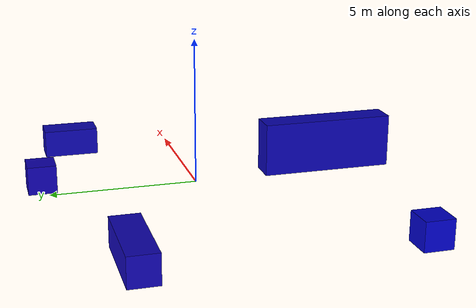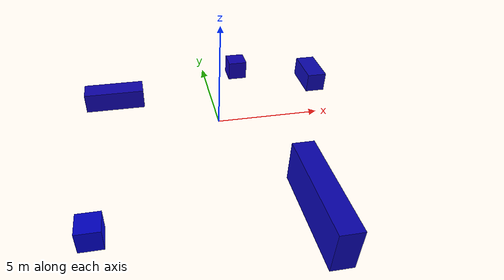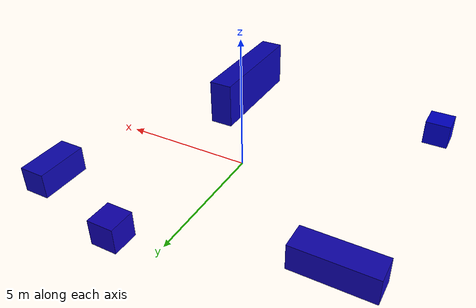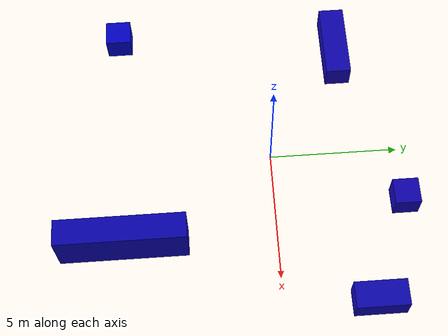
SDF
<?xml version='1.0'?>
<sdf version='1.7'>
  <model name='boxes'>
    <link name='link_0'>
      <inertial>
        <mass>1</mass>
        <inertia>
          <ixx>0.166667</ixx>
          <ixy>0</ixy>
          <ixz>0</ixz>
          <iyy>0.166667</iyy>
          <iyz>0</iyz>
          <izz>0.166667</izz>
        </inertia>
        <pose>0 0 0 0 -0 0</pose>
      </inertial>
      <pose>-6 -5.9 0 0 -0 0</pose>
      <gravity>1</gravity>
      <self_collide>0</self_collide>
      <kinematic>0</kinematic>
      <enable_wind>0</enable_wind>
      <visual name='visual'>
        <pose>0 0 0 0 -0 0</pose>
        <geometry>
          <box>
            <size>1 1 1</size>
          </box>
        </geometry>
        <material>
          <lighting>1</lighting>
          <script>
            <uri>file://media/materials/scripts/gazebo.material</uri>
            <name>Gazebo/Grey</name>
          </script>
          <shader type='pixel'>
            <normal_map>__default__</normal_map>
          </shader>
          <ambient>0 0 0.243 1</ambient>
          <diffuse>0 0 0.8 1</diffuse>
          <specular>0 0 0.008 1</specular>
          <emissive>0 0 0 1</emissive>
        </material>
        <transparency>0</transparency>
        <cast_shadows>1</cast_shadows>
      </visual>
      <collision name='collision'>
        <laser_retro>0</laser_retro>
        <max_contacts>10</max_contacts>
        <pose>0 0 0 0 -0 0</pose>
        <geometry>
          <box>
            <size>1 1 1</size>
          </box>
        </geometry>
        <surface>
          <friction>
            <ode>
              <mu>1</mu>
              <mu2>1</mu2>
              <fdir1>0 0 0</fdir1>
              <slip1>0</slip1>
              <slip2>0</slip2>
            </ode>
            <torsional>
              <coefficient>1</coefficient>
              <patch_radius>0</patch_radius>
              <surface_radius>0</surface_radius>
              <use_patch_radius>1</use_patch_radius>
              <ode>
                <slip>0</slip>
              </ode>
            </torsional>
          </friction>
          <bounce>
            <restitution_coefficient>0</restitution_coefficient>
            <threshold>1e+06</threshold>
          </bounce>
          <contact>
            <collide_without_contact>0</collide_without_contact>
            <collide_without_contact_bitmask>1</collide_without_contact_bitmask>
            <collide_bitmask>1</collide_bitmask>
            <ode>
              <soft_cfm>0</soft_cfm>
              <soft_erp>0.2</soft_erp>
              <kp>1e+13</kp>
              <kd>1</kd>
              <max_vel>0.01</max_vel>
              <min_depth>0</min_depth>
            </ode>
            <bullet>
              <split_impulse>1</split_impulse>
              <split_impulse_penetration_threshold>-0.01</split_impulse_penetration_threshold>
              <soft_cfm>0</soft_cfm>
              <soft_erp>0.2</soft_erp>
              <kp>1e+13</kp>
              <kd>1</kd>
            </bullet>
          </contact>
        </surface>
      </collision>
    </link>
    <link name='link_1'>
      <inertial>
        <mass>1</mass>
        <inertia>
          <ixx>0.166667</ixx>
          <ixy>0</ixy>
          <ixz>0</ixz>
          <iyy>0.166667</iyy>
          <iyz>0</iyz>
          <izz>0.166667</izz>
        </inertia>
        <pose>0 0 0 0 -0 0</pose>
      </inertial>
      <pose>2 5.1 0 0 -0 0</pose>
      <gravity>1</gravity>
      <self_collide>0</self_collide>
      <kinematic>0</kinematic>
      <enable_wind>0</enable_wind>
      <visual name='visual'>
        <pose>0 0 0 0 -0 0</pose>
        <geometry>
          <box>
            <size>1 1 1</size>
          </box>
        </geometry>
        <material>
          <lighting>1</lighting>
          <script>
            <uri>file://media/materials/scripts/gazebo.material</uri>
            <name>Gazebo/Grey</name>
          </script>
          <shader type='pixel'>
            <normal_map>__default__</normal_map>
          </shader>
          <ambient>0 0.02 0.298 1</ambient>
          <diffuse>0.059 0 0.698 1</diffuse>
          <specular>0 0 0.008 1</specular>
          <emissive>0 0 0 1</emissive>
        </material>
        <transparency>0</transparency>
        <cast_shadows>1</cast_shadows>
      </visual>
      <collision name='collision'>
        <laser_retro>0</laser_retro>
        <max_contacts>10</max_contacts>
        <pose>0 0 0 0 -0 0</pose>
        <geometry>
          <box>
            <size>1 1 1</size>
          </box>
        </geometry>
        <surface>
          <friction>
            <ode>
              <mu>1</mu>
              <mu2>1</mu2>
              <fdir1>0 0 0</fdir1>
              <slip1>0</slip1>
              <slip2>0</slip2>
            </ode>
            <torsional>
              <coefficient>1</coefficient>
              <patch_radius>0</patch_radius>
              <surface_radius>0</surface_radius>
              <use_patch_radius>1</use_patch_radius>
              <ode>
                <slip>0</slip>
              </ode>
            </torsional>
          </friction>
          <bounce>
            <restitution_coefficient>0</restitution_coefficient>
            <threshold>1e+06</threshold>
          </bounce>
          <contact>
            <collide_without_contact>0</collide_without_contact>
            <collide_without_contact_bitmask>1</collide_without_contact_bitmask>
            <collide_bitmask>1</collide_bitmask>
            <ode>
              <soft_cfm>0</soft_cfm>
              <soft_erp>0.2</soft_erp>
              <kp>1e+13</kp>
              <kd>1</kd>
              <max_vel>0.01</max_vel>
              <min_depth>0</min_depth>
            </ode>
            <bullet>
              <split_impulse>1</split_impulse>
              <split_impulse_penetration_threshold>-0.01</split_impulse_penetration_threshold>
              <soft_cfm>0</soft_cfm>
              <soft_erp>0.2</soft_erp>
              <kp>1e+13</kp>
              <kd>1</kd>
            </bullet>
          </contact>
        </surface>
      </collision>
    </link>
    <link name='link_2'>
      <inertial>
        <mass>1</mass>
        <inertia>
          <ixx>0.166667</ixx>
          <ixy>0</ixy>
          <ixz>0</ixz>
          <iyy>0.166667</iyy>
          <iyz>0</iyz>
          <izz>0.166667</izz>
        </inertia>
        <pose>0 0 0 0 -0 0</pose>
      </inertial>
      <pose>-5 3.1 0 0 -0 0</pose>
      <gravity>1</gravity>
      <self_collide>0</self_collide>
      <kinematic>0</kinematic>
      <enable_wind>0</enable_wind>
      <visual name='visual'>
        <pose>0 0 0 0 -0 0</pose>
        <geometry>
          <box>
            <size>3 1 1</size>
          </box>
        </geometry>
        <material>
          <lighting>1</lighting>
          <script>
            <uri>file://media/materials/scripts/gazebo.material</uri>
            <name>Gazebo/Grey</name>
          </script>
          <shader type='pixel'>
            <normal_map>__default__</normal_map>
          </shader>
          <ambient>0.027 0.004 0.298 1</ambient>
          <diffuse>0.059 0.012 0.698 1</diffuse>
          <specular>0 0 0.008 1</specular>
          <emissive>0 0 0 1</emissive>
        </material>
        <transparency>0</transparency>
        <cast_shadows>1</cast_shadows>
      </visual>
      <collision name='collision'>
        <laser_retro>0</laser_retro>
        <max_contacts>10</max_contacts>
        <pose>0 0 0 0 -0 0</pose>
        <geometry>
          <box>
            <size>3 1 1</size>
          </box>
        </geometry>
        <surface>
          <friction>
            <ode>
              <mu>1</mu>
              <mu2>1</mu2>
              <fdir1>0 0 0</fdir1>
              <slip1>0</slip1>
              <slip2>0</slip2>
            </ode>
            <torsional>
              <coefficient>1</coefficient>
              <patch_radius>0</patch_radius>
              <surface_radius>0</surface_radius>
              <use_patch_radius>1</use_patch_radius>
              <ode>
                <slip>0</slip>
              </ode>
            </torsional>
          </friction>
          <bounce>
            <restitution_coefficient>0</restitution_coefficient>
            <threshold>1e+06</threshold>
          </bounce>
          <contact>
            <collide_without_contact>0</collide_without_contact>
            <collide_without_contact_bitmask>1</collide_without_contact_bitmask>
            <collide_bitmask>1</collide_bitmask>
            <ode>
              <soft_cfm>0</soft_cfm>
              <soft_erp>0.2</soft_erp>
              <kp>1e+13</kp>
              <kd>1</kd>
              <max_vel>0.01</max_vel>
              <min_depth>0</min_depth>
            </ode>
            <bullet>
              <split_impulse>1</split_impulse>
              <split_impulse_penetration_threshold>-0.01</split_impulse_penetration_threshold>
              <soft_cfm>0</soft_cfm>
              <soft_erp>0.2</soft_erp>
              <kp>1e+13</kp>
              <kd>1</kd>
            </bullet>
          </contact>
        </surface>
      </collision>
    </link>
    <link name='link_3'>
      <inertial>
        <mass>1</mass>
        <inertia>
          <ixx>0.166667</ixx>
          <ixy>0</ixy>
          <ixz>0</ixz>
          <iyy>0.166667</iyy>
          <iyz>0</iyz>
          <izz>0.166667</izz>
        </inertia>
        <pose>0 0 0 0 -0 0</pose>
      </inertial>
      <pose>3 -5.9 0 0 -0 0</pose>
      <gravity>1</gravity>
      <self_collide>0</self_collide>
      <kinematic>0</kinematic>
      <enable_wind>0</enable_wind>
      <visual name='visual'>
        <pose>0 0 0 0 -0 0</pose>
        <geometry>
          <box>
            <size>1 5 2</size>
          </box>
        </geometry>
        <material>
          <lighting>1</lighting>
          <script>
            <uri>file://media/materials/scripts/gazebo.material</uri>
            <name>Gazebo/Grey</name>
          </script>
          <shader type='pixel'>
            <normal_map>__default__</normal_map>
          </shader>
          <ambient>0.004 0.004 0.298 1</ambient>
          <diffuse>0.031 0.008 0.698 1</diffuse>
          <specular>0 0 0.008 1</specular>
          <emissive>0 0 0 1</emissive>
        </material>
        <transparency>0</transparency>
        <cast_shadows>1</cast_shadows>
      </visual>
      <collision name='collision'>
        <laser_retro>0</laser_retro>
        <max_contacts>10</max_contacts>
        <pose>0 0 0 0 -0 0</pose>
        <geometry>
          <box>
            <size>1 5 2</size>
          </box>
        </geometry>
        <surface>
          <friction>
            <ode>
              <mu>1</mu>
              <mu2>1</mu2>
              <fdir1>0 0 0</fdir1>
              <slip1>0</slip1>
              <slip2>0</slip2>
            </ode>
            <torsional>
              <coefficient>1</coefficient>
              <patch_radius>0</patch_radius>
              <surface_radius>0</surface_radius>
              <use_patch_radius>1</use_patch_radius>
              <ode>
                <slip>0</slip>
              </ode>
            </torsional>
          </friction>
          <bounce>
            <restitution_coefficient>0</restitution_coefficient>
            <threshold>1e+06</threshold>
          </bounce>
          <contact>
            <collide_without_contact>0</collide_without_contact>
            <collide_without_contact_bitmask>1</collide_without_contact_bitmask>
            <collide_bitmask>1</collide_bitmask>
            <ode>
              <soft_cfm>0</soft_cfm>
              <soft_erp>0.2</soft_erp>
              <kp>1e+13</kp>
              <kd>1</kd>
              <max_vel>0.01</max_vel>
              <min_depth>0</min_depth>
            </ode>
            <bullet>
              <split_impulse>1</split_impulse>
              <split_impulse_penetration_threshold>-0.01</split_impulse_penetration_threshold>
              <soft_cfm>0</soft_cfm>
              <soft_erp>0.2</soft_erp>
              <kp>1e+13</kp>
              <kd>1</kd>
            </bullet>
          </contact>
        </surface>
      </collision>
    </link>
    <link name='link_4'>
      <inertial>
        <mass>1</mass>
        <inertia>
          <ixx>0.166667</ixx>
          <ixy>0</ixy>
          <ixz>0</ixz>
          <iyy>0.166667</iyy>
          <iyz>0</iyz>
          <izz>0.166667</izz>
        </inertia>
        <pose>0 0 0 0 -0 0</pose>
      </inertial>
      <pose>6 3.6 0 0 -0 0</pose>
      <gravity>1</gravity>
      <self_collide>0</self_collide>
      <kinematic>0</kinematic>
      <enable_wind>0</enable_wind>
      <visual name='visual'>
        <pose>0 0 0 0 -0 0</pose>
        <geometry>
          <box>
            <size>1 2 1</size>
          </box>
        </geometry>
        <material>
          <lighting>1</lighting>
          <script>
            <uri>file://media/materials/scripts/gazebo.material</uri>
            <name>Gazebo/Grey</name>
          </script>
          <shader type='pixel'>
            <normal_map>__default__</normal_map>
          </shader>
          <ambient>0.008 0.024 0.298 1</ambient>
          <diffuse>0.043 0.02 0.698 1</diffuse>
          <specular>0 0 0.008 1</specular>
          <emissive>0 0 0 1</emissive>
        </material>
        <transparency>0</transparency>
        <cast_shadows>1</cast_shadows>
      </visual>
      <collision name='collision'>
        <laser_retro>0</laser_retro>
        <max_contacts>10</max_contacts>
        <pose>0 0 0 0 -0 0</pose>
        <geometry>
          <box>
            <size>1 2 1</size>
          </box>
        </geometry>
        <surface>
          <friction>
            <ode>
              <mu>1</mu>
              <mu2>1</mu2>
              <fdir1>0 0 0</fdir1>
              <slip1>0</slip1>
              <slip2>0</slip2>
            </ode>
            <torsional>
              <coefficient>1</coefficient>
              <patch_radius>0</patch_radius>
              <surface_radius>0</surface_radius>
              <use_patch_radius>1</use_patch_radius>
              <ode>
                <slip>0</slip>
              </ode>
            </torsional>
          </friction>
          <bounce>
            <restitution_coefficient>0</restitution_coefficient>
            <threshold>1e+06</threshold>
          </bounce>
          <contact>
            <collide_without_contact>0</collide_without_contact>
            <collide_without_contact_bitmask>1</collide_without_contact_bitmask>
            <collide_bitmask>1</collide_bitmask>
            <ode>
              <soft_cfm>0</soft_cfm>
              <soft_erp>0.2</soft_erp>
              <kp>1e+13</kp>
              <kd>1</kd>
              <max_vel>0.01</max_vel>
              <min_depth>0</min_depth>
            </ode>
            <bullet>
              <split_impulse>1</split_impulse>
              <split_impulse_penetration_threshold>-0.01</split_impulse_penetration_threshold>
              <soft_cfm>0</soft_cfm>
              <soft_erp>0.2</soft_erp>
              <kp>1e+13</kp>
              <kd>1</kd>
            </bullet>
          </contact>
        </surface>
      </collision>
    </link>
    <static>0</static>
    <allow_auto_disable>1</allow_auto_disable>
  </model>
</sdf>
